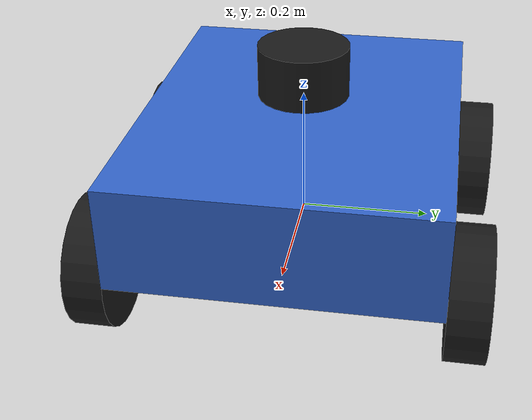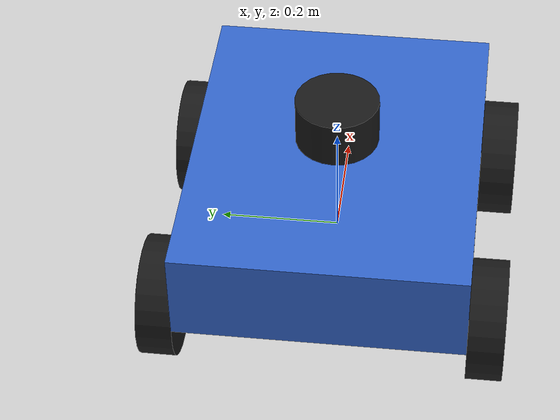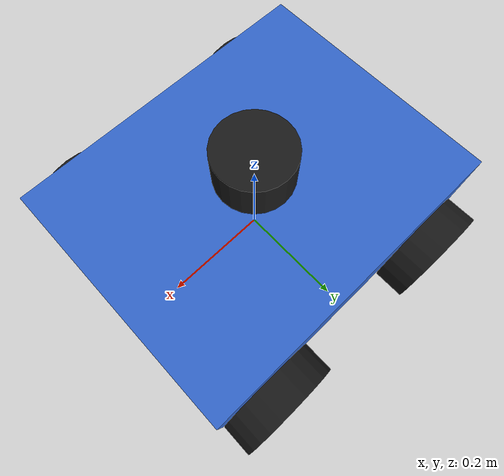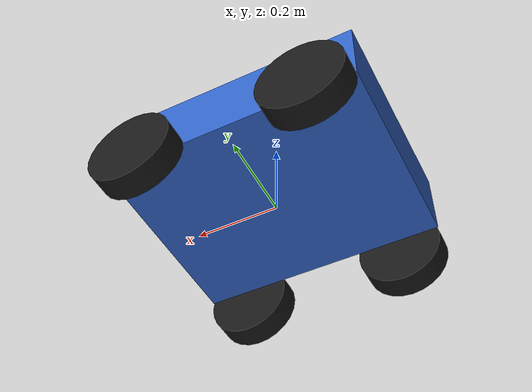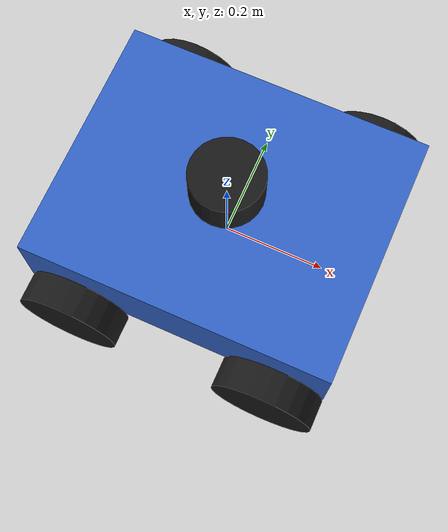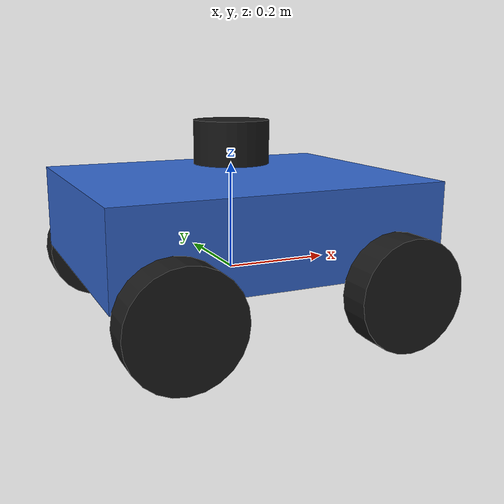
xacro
<?xml version="1.0"?>
<robot name="holonomic_bot" xmlns:xacro="http://www.ros.org/wiki/xacro">

  <xacro:property name="wheel_radius" value="0.10"/>
  <xacro:property name="wheel_width" value="0.06"/>
  <xacro:property name="base_x" value="0.60"/>
  <xacro:property name="base_y" value="0.48"/>
  <xacro:property name="base_z" value="0.16"/>

  <material name="blue">
    <color rgba="0.2 0.4 0.8 1"/>
  </material>
  <material name="dark">
    <color rgba="0.1 0.1 0.1 1"/>
  </material>

  <link name="base_link">
    <visual>
      <origin xyz="0 0 0.10" rpy="0 0 0"/>
      <geometry>
        <box size="${base_x} ${base_y} ${base_z}"/>
      </geometry>
      <material name="blue"/>
    </visual>
    <collision>
      <origin xyz="0 0 0.10" rpy="0 0 0"/>
      <geometry>
        <box size="${base_x} ${base_y} ${base_z}"/>
      </geometry>
    </collision>
    <inertial>
      <mass value="2.5"/>
      <origin xyz="0 0 0.10" rpy="0 0 0"/>
      <inertia ixx="0.01333" ixy="0" ixz="0" iyy="0.02008" iyz="0" izz="0.03075"/>
    </inertial>
  </link>

  <!-- Wheels: fixed joints here (TF only, no simulated rotation) -->
  <xacro:macro name="wheel" params="name x y">
    <link name="${name}_wheel">
      <visual>
        <origin xyz="0 0 0" rpy="1.5708 0 0"/>
        <geometry>
          <cylinder radius="${wheel_radius}" length="${wheel_width}"/>
        </geometry>
        <material name="dark"/>
      </visual>
      <collision>
        <origin xyz="0 0 0" rpy="1.5708 0 0"/>
        <geometry>
          <cylinder radius="${wheel_radius}" length="${wheel_width}"/>
        </geometry>
      </collision>
      <inertial>
        <mass value="0.15"/>
        <origin xyz="0 0 0" rpy="0 0 0"/>
        <inertia ixx="0.000105" ixy="0" ixz="0" iyy="0.0001875" iyz="0" izz="0.000105"/>
      </inertial>
    </link>
    <joint name="${name}_wheel_joint" type="fixed">
      <parent link="base_link"/>
      <child link="${name}_wheel"/>
      <origin xyz="${x} ${y} 0" rpy="0 0 0"/>
    </joint>
  </xacro:macro>

  <xacro:wheel name="front_left"  x="0.20"  y="0.27"/>
  <xacro:wheel name="front_right" x="0.20"  y="-0.27"/>
  <xacro:wheel name="rear_left"   x="-0.20" y="0.27"/>
  <xacro:wheel name="rear_right"  x="-0.20" y="-0.27"/>

  <!-- Lidar -->
  <link name="lidar_link">
    <visual>
      <geometry>
        <cylinder radius="0.07" length="0.08"/>
      </geometry>
      <material name="dark"/>
    </visual>
    <collision>
      <geometry>
        <cylinder radius="0.07" length="0.08"/>
      </geometry>
    </collision>
    <inertial>
      <mass value="0.05"/>
      <origin xyz="0 0 0" rpy="0 0 0"/>
      <inertia ixx="0.000022" ixy="0" ixz="0" iyy="0.000022" iyz="0" izz="0.0000306"/>
    </inertial>
  </link>
  <joint name="lidar_joint" type="fixed">
    <parent link="base_link"/>
    <child link="lidar_link"/>
    <origin xyz="0 0 0.24" rpy="0 0 0"/>
  </joint>

</robot>
